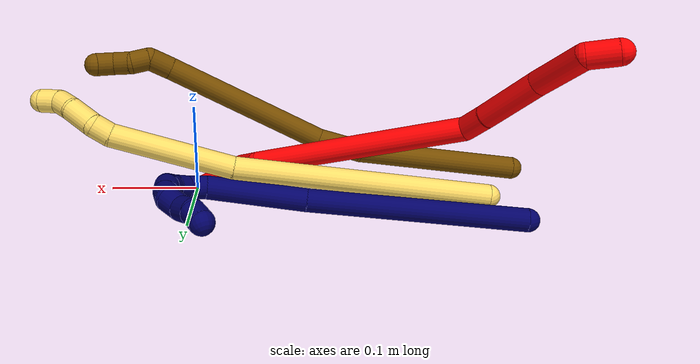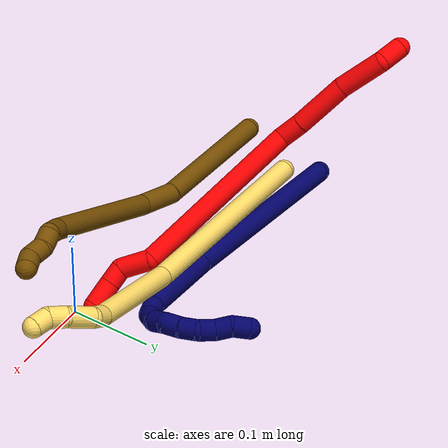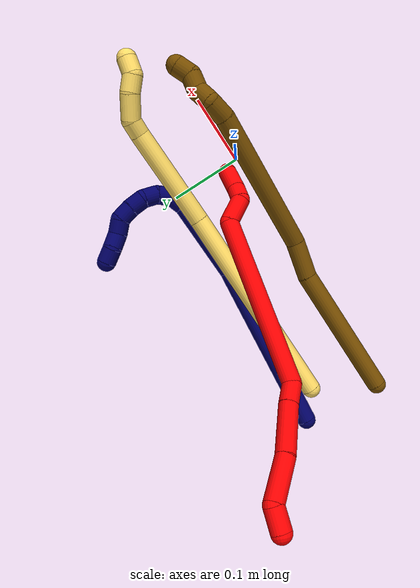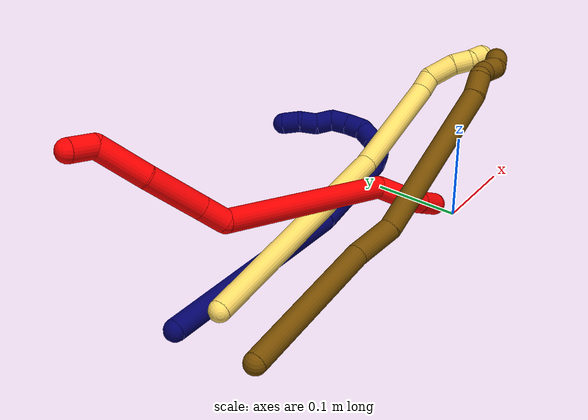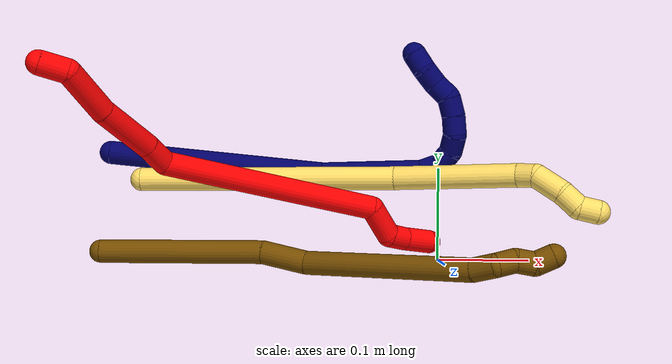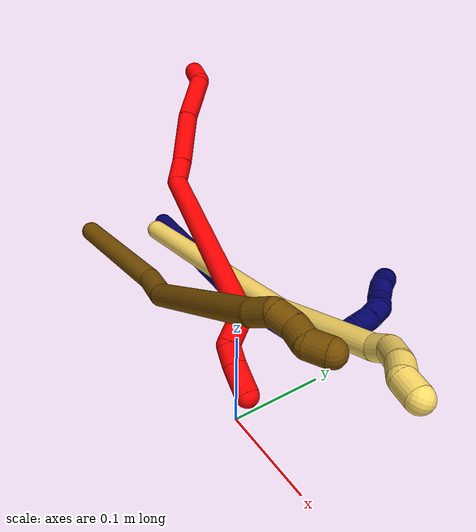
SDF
<sdf version="1.7">
 <world name="default">
  <model name="2">
   <static>0</static>
   <link name="2">
    <collision name="collision-cylinder-e_1_1_4">
     <pose>0.001347 -0.001269 -0.014573 3.05475 0.091822 1.62663</pose>
     <geometry><cylinder><radius>0.0125</radius><length>0.029379</length></cylinder></geometry>
     <surface>
      <friction><ode><mu>1.16</mu><mu2>1.16</mu2><slip1>0</slip1><slip2>0</slip2></ode></friction>
      <contact><ode><kp>1e+06</kp><kd>1</kd><max_vel>0</max_vel><min_depth>0.001</min_depth></ode></contact>
     </surface>
    </collision>
    <visual name="visual-cylinder-e_1_1_4">
     <pose>0.001347 -0.001269 -0.014573 3.05475 0.091822 1.62663</pose>
     <geometry><cylinder><radius>0.0125</radius><length>0.029379</length></cylinder></geometry>
     <material><ambient>1 0 0 1</ambient></material>
    </visual>
    <collision name="collision-cylinder-e_2_4_5">
     <pose>0.004822 0.014902 -0.052022 -2.49025 0.073847 -0.217913</pose>
     <geometry><cylinder><radius>0.0125</radius><length>0.057687</length></cylinder></geometry>
     <surface>
      <friction><ode><mu>1.16</mu><mu2>1.16</mu2><slip1>0</slip1><slip2>0</slip2></ode></friction>
      <contact><ode><kp>1e+06</kp><kd>1</kd><max_vel>0</max_vel><min_depth>0.001</min_depth></ode></contact>
     </surface>
    </collision>
    <visual name="visual-cylinder-e_2_4_5">
     <pose>0.004822 0.014902 -0.052022 -2.49025 0.073847 -0.217913</pose>
     <geometry><cylinder><radius>0.0125</radius><length>0.057687</length></cylinder></geometry>
     <material><ambient>1 0 0 1</ambient></material>
    </visual>
    <collision name="collision-cylinder-e_3_5_6">
     <pose>0.01396 0.049352 -0.102584 -2.59061 0.212474 -0.721476</pose>
     <geometry><cylinder><radius>0.0125</radius><length>0.066486</length></cylinder></geometry>
     <surface>
      <friction><ode><mu>1.16</mu><mu2>1.16</mu2><slip1>0</slip1><slip2>0</slip2></ode></friction>
      <contact><ode><kp>1e+06</kp><kd>1</kd><max_vel>0</max_vel><min_depth>0.001</min_depth></ode></contact>
     </surface>
    </collision>
    <visual name="visual-cylinder-e_3_5_6">
     <pose>0.01396 0.049352 -0.102584 -2.59061 0.212474 -0.721476</pose>
     <geometry><cylinder><radius>0.0125</radius><length>0.066486</length></cylinder></geometry>
     <material><ambient>1 0 0 1</ambient></material>
    </visual>
    <collision name="collision-cylinder-e_4_6_7">
     <pose>0.022993 0.074593 -0.142368 -2.54429 0.137379 -0.439716</pose>
     <geometry><cylinder><radius>0.0125</radius><length>0.029541</length></cylinder></geometry>
     <surface>
      <friction><ode><mu>1.16</mu><mu2>1.16</mu2><slip1>0</slip1><slip2>0</slip2></ode></friction>
      <contact><ode><kp>1e+06</kp><kd>1</kd><max_vel>0</max_vel><min_depth>0.001</min_depth></ode></contact>
     </surface>
    </collision>
    <visual name="visual-cylinder-e_4_6_7">
     <pose>0.022993 0.074593 -0.142368 -2.54429 0.137379 -0.439716</pose>
     <geometry><cylinder><radius>0.0125</radius><length>0.029541</length></cylinder></geometry>
     <material><ambient>1 0 0 1</ambient></material>
    </visual>
    <collision name="collision-cylinder-e_5_7_8">
     <pose>0.04503 0.071914 -0.264981 3.04322 0.178311 2.13483</pose>
     <geometry><cylinder><radius>0.0125</radius><length>0.225682</length></cylinder></geometry>
     <surface>
      <friction><ode><mu>1.16</mu><mu2>1.16</mu2><slip1>0</slip1><slip2>0</slip2></ode></friction>
      <contact><ode><kp>1e+06</kp><kd>1</kd><max_vel>0</max_vel><min_depth>0.001</min_depth></ode></contact>
     </surface>
    </collision>
    <visual name="visual-cylinder-e_5_7_8">
     <pose>0.04503 0.071914 -0.264981 3.04322 0.178311 2.13483</pose>
     <geometry><cylinder><radius>0.0125</radius><length>0.225682</length></cylinder></geometry>
     <material><ambient>1 0 0 1</ambient></material>
    </visual>
    <collision name="collision-cylinder-e_6_8_9">
     <pose>0.061477 0.071331 -0.390849 -2.54963 -0.190466 0.607138</pose>
     <geometry><cylinder><radius>0.0125</radius><length>0.037684</length></cylinder></geometry>
     <surface>
      <friction><ode><mu>1.16</mu><mu2>1.16</mu2><slip1>0</slip1><slip2>0</slip2></ode></friction>
      <contact><ode><kp>1e+06</kp><kd>1</kd><max_vel>0</max_vel><min_depth>0.001</min_depth></ode></contact>
     </surface>
    </collision>
    <visual name="visual-cylinder-e_6_8_9">
     <pose>0.061477 0.071331 -0.390849 -2.54963 -0.190466 0.607138</pose>
     <geometry><cylinder><radius>0.0125</radius><length>0.037684</length></cylinder></geometry>
     <material><ambient>1 0 0 1</ambient></material>
    </visual>
    <collision name="collision-cylinder-e_7_9_10">
     <pose>0.062164 0.083434 -0.415818 -2.95854 0.410242 -2.31065</pose>
     <geometry><cylinder><radius>0.0125</radius><length>0.021329</length></cylinder></geometry>
     <surface>
      <friction><ode><mu>1.16</mu><mu2>1.16</mu2><slip1>0</slip1><slip2>0</slip2></ode></friction>
      <contact><ode><kp>1e+06</kp><kd>1</kd><max_vel>0</max_vel><min_depth>0.001</min_depth></ode></contact>
     </surface>
    </collision>
    <visual name="visual-cylinder-e_7_9_10">
     <pose>0.062164 0.083434 -0.415818 -2.95854 0.410242 -2.31065</pose>
     <geometry><cylinder><radius>0.0125</radius><length>0.021329</length></cylinder></geometry>
     <material><ambient>1 0 0 1</ambient></material>
    </visual>
    <collision name="collision-cylinder-e_8_10_2">
     <pose>0.072846 0.086055 -0.440178 -3.08464 0.410616 -2.8697</pose>
     <geometry><cylinder><radius>0.0125</radius><length>0.032213</length></cylinder></geometry>
     <surface>
      <friction><ode><mu>1.16</mu><mu2>1.16</mu2><slip1>0</slip1><slip2>0</slip2></ode></friction>
      <contact><ode><kp>1e+06</kp><kd>1</kd><max_vel>0</max_vel><min_depth>0.001</min_depth></ode></contact>
     </surface>
    </collision>
    <visual name="visual-cylinder-e_8_10_2">
     <pose>0.072846 0.086055 -0.440178 -3.08464 0.410616 -2.8697</pose>
     <geometry><cylinder><radius>0.0125</radius><length>0.032213</length></cylinder></geometry>
     <material><ambient>1 0 0 1</ambient></material>
    </visual>
    <collision name="collision-sphere-2">
     <pose>0.079276 0.086896 -0.454921 0 -0 0</pose>
     <geometry><sphere><radius>0.0125</radius></sphere></geometry>
     <surface>
      <friction><ode><mu>1.16</mu><mu2>1.16</mu2><slip1>0</slip1><slip2>0</slip2></ode></friction>
      <contact><ode><kp>1e+06</kp><kd>1</kd><max_vel>0</max_vel><min_depth>0.001</min_depth></ode></contact>
     </surface>
    </collision>
    <visual name="visual-sphere-2">
     <pose>0.079276 0.086896 -0.454921 0 -0 0</pose>
     <geometry><sphere><radius>0.0125</radius></sphere></geometry>
     <material><ambient>1 0 0 1</ambient></material>
    </visual>
    <collision name="collision-sphere-10">
     <pose>0.066417 0.085214 -0.425434 0 -0 0</pose>
     <geometry><sphere><radius>0.0125</radius></sphere></geometry>
     <surface>
      <friction><ode><mu>1.16</mu><mu2>1.16</mu2><slip1>0</slip1><slip2>0</slip2></ode></friction>
      <contact><ode><kp>1e+06</kp><kd>1</kd><max_vel>0</max_vel><min_depth>0.001</min_depth></ode></contact>
     </surface>
    </collision>
    <visual name="visual-sphere-10">
     <pose>0.066417 0.085214 -0.425434 0 -0 0</pose>
     <geometry><sphere><radius>0.0125</radius></sphere></geometry>
     <material><ambient>1 0 0 1</ambient></material>
    </visual>
    <collision name="collision-sphere-9">
     <pose>0.05791 0.081654 -0.406202 0 -0 0</pose>
     <geometry><sphere><radius>0.0125</radius></sphere></geometry>
     <surface>
      <friction><ode><mu>1.16</mu><mu2>1.16</mu2><slip1>0</slip1><slip2>0</slip2></ode></friction>
      <contact><ode><kp>1e+06</kp><kd>1</kd><max_vel>0</max_vel><min_depth>0.001</min_depth></ode></contact>
     </surface>
    </collision>
    <visual name="visual-sphere-9">
     <pose>0.05791 0.081654 -0.406202 0 -0 0</pose>
     <geometry><sphere><radius>0.0125</radius></sphere></geometry>
     <material><ambient>1 0 0 1</ambient></material>
    </visual>
    <collision name="collision-sphere-4">
     <pose>0.002694 -0.002537 -0.029145 0 -0 0</pose>
     <geometry><sphere><radius>0.0125</radius></sphere></geometry>
     <surface>
      <friction><ode><mu>1.16</mu><mu2>1.16</mu2><slip1>0</slip1><slip2>0</slip2></ode></friction>
      <contact><ode><kp>1e+06</kp><kd>1</kd><max_vel>0</max_vel><min_depth>0.001</min_depth></ode></contact>
     </surface>
    </collision>
    <visual name="visual-sphere-4">
     <pose>0.002694 -0.002537 -0.029145 0 -0 0</pose>
     <geometry><sphere><radius>0.0125</radius></sphere></geometry>
     <material><ambient>1 0 0 1</ambient></material>
    </visual>
    <collision name="collision-sphere-1">
     <geometry><sphere><radius>0.0125</radius></sphere></geometry>
     <surface>
      <friction><ode><mu>1.16</mu><mu2>1.16</mu2><slip1>0</slip1><slip2>0</slip2></ode></friction>
      <contact><ode><kp>1e+06</kp><kd>1</kd><max_vel>0</max_vel><min_depth>0.001</min_depth></ode></contact>
     </surface>
    </collision>
    <visual name="visual-sphere-1">
     <geometry><sphere><radius>0.0125</radius></sphere></geometry>
     <material><ambient>1 0 0 1</ambient></material>
    </visual>
    <collision name="collision-sphere-8">
     <pose>0.065045 0.061007 -0.375495 0 -0 0</pose>
     <geometry><sphere><radius>0.0125</radius></sphere></geometry>
     <surface>
      <friction><ode><mu>1.16</mu><mu2>1.16</mu2><slip1>0</slip1><slip2>0</slip2></ode></friction>
      <contact><ode><kp>1e+06</kp><kd>1</kd><max_vel>0</max_vel><min_depth>0.001</min_depth></ode></contact>
     </surface>
    </collision>
    <visual name="visual-sphere-8">
     <pose>0.065045 0.061007 -0.375495 0 -0 0</pose>
     <geometry><sphere><radius>0.0125</radius></sphere></geometry>
     <material><ambient>1 0 0 1</ambient></material>
    </visual>
    <collision name="collision-sphere-5">
     <pose>0.00695 0.03234 -0.074898 0 -0 0</pose>
     <geometry><sphere><radius>0.0125</radius></sphere></geometry>
     <surface>
      <friction><ode><mu>1.16</mu><mu2>1.16</mu2><slip1>0</slip1><slip2>0</slip2></ode></friction>
      <contact><ode><kp>1e+06</kp><kd>1</kd><max_vel>0</max_vel><min_depth>0.001</min_depth></ode></contact>
     </surface>
    </collision>
    <visual name="visual-sphere-5">
     <pose>0.00695 0.03234 -0.074898 0 -0 0</pose>
     <geometry><sphere><radius>0.0125</radius></sphere></geometry>
     <material><ambient>1 0 0 1</ambient></material>
    </visual>
    <collision name="collision-sphere-6">
     <pose>0.02097 0.066364 -0.13027 0 -0 0</pose>
     <geometry><sphere><radius>0.0125</radius></sphere></geometry>
     <surface>
      <friction><ode><mu>1.16</mu><mu2>1.16</mu2><slip1>0</slip1><slip2>0</slip2></ode></friction>
      <contact><ode><kp>1e+06</kp><kd>1</kd><max_vel>0</max_vel><min_depth>0.001</min_depth></ode></contact>
     </surface>
    </collision>
    <visual name="visual-sphere-6">
     <pose>0.02097 0.066364 -0.13027 0 -0 0</pose>
     <geometry><sphere><radius>0.0125</radius></sphere></geometry>
     <material><ambient>1 0 0 1</ambient></material>
    </visual>
    <collision name="collision-sphere-7">
     <pose>0.025016 0.082822 -0.154466 0 -0 0</pose>
     <geometry><sphere><radius>0.0125</radius></sphere></geometry>
     <surface>
      <friction><ode><mu>1.16</mu><mu2>1.16</mu2><slip1>0</slip1><slip2>0</slip2></ode></friction>
      <contact><ode><kp>1e+06</kp><kd>1</kd><max_vel>0</max_vel><min_depth>0.001</min_depth></ode></contact>
     </surface>
    </collision>
    <visual name="visual-sphere-7">
     <pose>0.025016 0.082822 -0.154466 0 -0 0</pose>
     <geometry><sphere><radius>0.0125</radius></sphere></geometry>
     <material><ambient>1 0 0 1</ambient></material>
    </visual>
    <inertial>
     <pose>0.036154 0.059553 -0.224067 0 -0 0</pose>
     <mass>0.5</mass>
     <inertia>
      <ixx>0.000324</ixx>
      <ixy>0</ixy>
      <ixz>0</ixz>
      <iyy>0.001291</iyy>
      <iyz>0</iyz>
      <izz>-0.000153</izz>
     </inertia>
    </inertial>
   </link>
   <pose>-0.398435 0.194143 0.211415 -1.30404 0.787754 1.35926</pose>
  </model>
  <model name="5">
   <static>0</static>
   <link name="5">
    <collision name="collision-cylinder-e_1_1_4">
     <pose>0.099391 0.00742 0.093886 -0.078869 0.812317 -0.033934</pose>
     <geometry><cylinder><radius>0.0125</radius><length>0.273848</length></cylinder></geometry>
     <surface>
      <friction><ode><mu>1.16</mu><mu2>1.16</mu2><slip1>0</slip1><slip2>0</slip2></ode></friction>
      <contact><ode><kp>1e+06</kp><kd>1</kd><max_vel>0</max_vel><min_depth>0.001</min_depth></ode></contact>
     </surface>
    </collision>
    <visual name="visual-cylinder-e_1_1_4">
     <pose>0.099391 0.00742 0.093886 -0.078869 0.812317 -0.033934</pose>
     <geometry><cylinder><radius>0.0125</radius><length>0.273848</length></cylinder></geometry>
     <material><ambient>1 0.858824 0.4 1</ambient></material>
    </visual>
    <collision name="collision-cylinder-e_2_4_5">
     <pose>0.249158 0.008113 0.229251 0.160797 0.875586 0.075394</pose>
     <geometry><cylinder><radius>0.0125</radius><length>0.131203</length></cylinder></geometry>
     <surface>
      <friction><ode><mu>1.16</mu><mu2>1.16</mu2><slip1>0</slip1><slip2>0</slip2></ode></friction>
      <contact><ode><kp>1e+06</kp><kd>1</kd><max_vel>0</max_vel><min_depth>0.001</min_depth></ode></contact>
     </surface>
    </collision>
    <visual name="visual-cylinder-e_2_4_5">
     <pose>0.249158 0.008113 0.229251 0.160797 0.875586 0.075394</pose>
     <geometry><cylinder><radius>0.0125</radius><length>0.131203</length></cylinder></geometry>
     <material><ambient>1 0.858824 0.4 1</ambient></material>
    </visual>
    <collision name="collision-cylinder-e_3_5_6">
     <pose>0.307891 -0.001699 0.275369 0.586644 0.982801 0.320518</pose>
     <geometry><cylinder><radius>0.0125</radius><length>0.020086</length></cylinder></geometry>
     <surface>
      <friction><ode><mu>1.16</mu><mu2>1.16</mu2><slip1>0</slip1><slip2>0</slip2></ode></friction>
      <contact><ode><kp>1e+06</kp><kd>1</kd><max_vel>0</max_vel><min_depth>0.001</min_depth></ode></contact>
     </surface>
    </collision>
    <visual name="visual-cylinder-e_3_5_6">
     <pose>0.307891 -0.001699 0.275369 0.586644 0.982801 0.320518</pose>
     <geometry><cylinder><radius>0.0125</radius><length>0.020086</length></cylinder></geometry>
     <material><ambient>1 0.858824 0.4 1</ambient></material>
    </visual>
    <collision name="collision-cylinder-e_4_6_7">
     <pose>0.332256 -0.00356 0.281853 -0.585302 1.43344 -0.513452</pose>
     <geometry><cylinder><radius>0.0125</radius><length>0.032322</length></cylinder></geometry>
     <surface>
      <friction><ode><mu>1.16</mu><mu2>1.16</mu2><slip1>0</slip1><slip2>0</slip2></ode></friction>
      <contact><ode><kp>1e+06</kp><kd>1</kd><max_vel>0</max_vel><min_depth>0.001</min_depth></ode></contact>
     </surface>
    </collision>
    <visual name="visual-cylinder-e_4_6_7">
     <pose>0.332256 -0.00356 0.281853 -0.585302 1.43344 -0.513452</pose>
     <geometry><cylinder><radius>0.0125</radius><length>0.032322</length></cylinder></geometry>
     <material><ambient>1 0.858824 0.4 1</ambient></material>
    </visual>
    <collision name="collision-cylinder-e_5_7_8">
     <pose>0.358728 0.001055 0.284029 -1.47335 1.25583 -1.16454</pose>
     <geometry><cylinder><radius>0.0125</radius><length>0.022011</length></cylinder></geometry>
     <surface>
      <friction><ode><mu>1.16</mu><mu2>1.16</mu2><slip1>0</slip1><slip2>0</slip2></ode></friction>
      <contact><ode><kp>1e+06</kp><kd>1</kd><max_vel>0</max_vel><min_depth>0.001</min_depth></ode></contact>
     </surface>
    </collision>
    <visual name="visual-cylinder-e_5_7_8">
     <pose>0.358728 0.001055 0.284029 -1.47335 1.25583 -1.16454</pose>
     <geometry><cylinder><radius>0.0125</radius><length>0.022011</length></cylinder></geometry>
     <material><ambient>1 0.858824 0.4 1</ambient></material>
    </visual>
    <collision name="collision-cylinder-e_6_8_2">
     <pose>0.377189 0.007455 0.290052 -0.485971 0.893055 -0.236258</pose>
     <geometry><cylinder><radius>0.0125</radius><length>0.020531</length></cylinder></geometry>
     <surface>
      <friction><ode><mu>1.16</mu><mu2>1.16</mu2><slip1>0</slip1><slip2>0</slip2></ode></friction>
      <contact><ode><kp>1e+06</kp><kd>1</kd><max_vel>0</max_vel><min_depth>0.001</min_depth></ode></contact>
     </surface>
    </collision>
    <visual name="visual-cylinder-e_6_8_2">
     <pose>0.377189 0.007455 0.290052 -0.485971 0.893055 -0.236258</pose>
     <geometry><cylinder><radius>0.0125</radius><length>0.020531</length></cylinder></geometry>
     <material><ambient>1 0.858824 0.4 1</ambient></material>
    </visual>
    <collision name="collision-sphere-2">
     <pose>0.385186 0.010461 0.295744 0 -0 0</pose>
     <geometry><sphere><radius>0.0125</radius></sphere></geometry>
     <surface>
      <friction><ode><mu>1.16</mu><mu2>1.16</mu2><slip1>0</slip1><slip2>0</slip2></ode></friction>
      <contact><ode><kp>1e+06</kp><kd>1</kd><max_vel>0</max_vel><min_depth>0.001</min_depth></ode></contact>
     </surface>
    </collision>
    <visual name="visual-sphere-2">
     <pose>0.385186 0.010461 0.295744 0 -0 0</pose>
     <geometry><sphere><radius>0.0125</radius></sphere></geometry>
     <material><ambient>1 0.858824 0.4 1</ambient></material>
    </visual>
    <collision name="collision-sphere-4">
     <pose>0.198781 0.01484 0.187772 0 -0 0</pose>
     <geometry><sphere><radius>0.0125</radius></sphere></geometry>
     <surface>
      <friction><ode><mu>1.16</mu><mu2>1.16</mu2><slip1>0</slip1><slip2>0</slip2></ode></friction>
      <contact><ode><kp>1e+06</kp><kd>1</kd><max_vel>0</max_vel><min_depth>0.001</min_depth></ode></contact>
     </surface>
    </collision>
    <visual name="visual-sphere-4">
     <pose>0.198781 0.01484 0.187772 0 -0 0</pose>
     <geometry><sphere><radius>0.0125</radius></sphere></geometry>
     <material><ambient>1 0.858824 0.4 1</ambient></material>
    </visual>
    <collision name="collision-sphere-1">
     <geometry><sphere><radius>0.0125</radius></sphere></geometry>
     <surface>
      <friction><ode><mu>1.16</mu><mu2>1.16</mu2><slip1>0</slip1><slip2>0</slip2></ode></friction>
      <contact><ode><kp>1e+06</kp><kd>1</kd><max_vel>0</max_vel><min_depth>0.001</min_depth></ode></contact>
     </surface>
    </collision>
    <visual name="visual-sphere-1">
     <geometry><sphere><radius>0.0125</radius></sphere></geometry>
     <material><ambient>1 0.858824 0.4 1</ambient></material>
    </visual>
    <collision name="collision-sphere-8">
     <pose>0.369193 0.004448 0.284361 0 -0 0</pose>
     <geometry><sphere><radius>0.0125</radius></sphere></geometry>
     <surface>
      <friction><ode><mu>1.16</mu><mu2>1.16</mu2><slip1>0</slip1><slip2>0</slip2></ode></friction>
      <contact><ode><kp>1e+06</kp><kd>1</kd><max_vel>0</max_vel><min_depth>0.001</min_depth></ode></contact>
     </surface>
    </collision>
    <visual name="visual-sphere-8">
     <pose>0.369193 0.004448 0.284361 0 -0 0</pose>
     <geometry><sphere><radius>0.0125</radius></sphere></geometry>
     <material><ambient>1 0.858824 0.4 1</ambient></material>
    </visual>
    <collision name="collision-sphere-5">
     <pose>0.299534 0.001385 0.270729 0 -0 0</pose>
     <geometry><sphere><radius>0.0125</radius></sphere></geometry>
     <surface>
      <friction><ode><mu>1.16</mu><mu2>1.16</mu2><slip1>0</slip1><slip2>0</slip2></ode></friction>
      <contact><ode><kp>1e+06</kp><kd>1</kd><max_vel>0</max_vel><min_depth>0.001</min_depth></ode></contact>
     </surface>
    </collision>
    <visual name="visual-sphere-5">
     <pose>0.299534 0.001385 0.270729 0 -0 0</pose>
     <geometry><sphere><radius>0.0125</radius></sphere></geometry>
     <material><ambient>1 0.858824 0.4 1</ambient></material>
    </visual>
    <collision name="collision-sphere-6">
     <pose>0.316247 -0.004783 0.280008 0 -0 0</pose>
     <geometry><sphere><radius>0.0125</radius></sphere></geometry>
     <surface>
      <friction><ode><mu>1.16</mu><mu2>1.16</mu2><slip1>0</slip1><slip2>0</slip2></ode></friction>
      <contact><ode><kp>1e+06</kp><kd>1</kd><max_vel>0</max_vel><min_depth>0.001</min_depth></ode></contact>
     </surface>
    </collision>
    <visual name="visual-sphere-6">
     <pose>0.316247 -0.004783 0.280008 0 -0 0</pose>
     <geometry><sphere><radius>0.0125</radius></sphere></geometry>
     <material><ambient>1 0.858824 0.4 1</ambient></material>
    </visual>
    <collision name="collision-sphere-7">
     <pose>0.348264 -0.002338 0.283697 0 -0 0</pose>
     <geometry><sphere><radius>0.0125</radius></sphere></geometry>
     <surface>
      <friction><ode><mu>1.16</mu><mu2>1.16</mu2><slip1>0</slip1><slip2>0</slip2></ode></friction>
      <contact><ode><kp>1e+06</kp><kd>1</kd><max_vel>0</max_vel><min_depth>0.001</min_depth></ode></contact>
     </surface>
    </collision>
    <visual name="visual-sphere-7">
     <pose>0.348264 -0.002338 0.283697 0 -0 0</pose>
     <geometry><sphere><radius>0.0125</radius></sphere></geometry>
     <material><ambient>1 0.858824 0.4 1</ambient></material>
    </visual>
    <inertial>
     <pose>0.184943 0.006247 0.165273 0 -0 0</pose>
     <mass>0.5</mass>
     <inertia>
      <ixx>0.001308</ixx>
      <ixy>0</ixy>
      <ixz>0</ixz>
      <iyy>0.001889</iyy>
      <iyz>0</iyz>
      <izz>-0.001458</izz>
     </inertia>
    </inertial>
   </link>
   <pose>-0.32248 0.084439 0.026403 -1.83797 -0.479511 -0.694337</pose>
  </model>
  <model name="7">
   <static>0</static>
   <link name="7">
    <collision name="collision-cylinder-e_1_1_4">
     <pose>0.100532 -0.02932 0.050282 0.527911 1.04598 0.309145</pose>
     <geometry><cylinder><radius>0.0125</radius><length>0.232334</length></cylinder></geometry>
     <surface>
      <friction><ode><mu>1.16</mu><mu2>1.16</mu2><slip1>0</slip1><slip2>0</slip2></ode></friction>
      <contact><ode><kp>1e+06</kp><kd>1</kd><max_vel>0</max_vel><min_depth>0.001</min_depth></ode></contact>
     </surface>
    </collision>
    <visual name="visual-cylinder-e_1_1_4">
     <pose>0.100532 -0.02932 0.050282 0.527911 1.04598 0.309145</pose>
     <geometry><cylinder><radius>0.0125</radius><length>0.232334</length></cylinder></geometry>
     <material><ambient>0.003922 0 0.403922 1</ambient></material>
    </visual>
    <collision name="collision-cylinder-e_2_4_5">
     <pose>0.249611 -0.06392 0.122911 0.231984 1.12898 0.147294</pose>
     <geometry><cylinder><radius>0.0125</radius><length>0.107405</length></cylinder></geometry>
     <surface>
      <friction><ode><mu>1.16</mu><mu2>1.16</mu2><slip1>0</slip1><slip2>0</slip2></ode></friction>
      <contact><ode><kp>1e+06</kp><kd>1</kd><max_vel>0</max_vel><min_depth>0.001</min_depth></ode></contact>
     </surface>
    </collision>
    <visual name="visual-cylinder-e_2_4_5">
     <pose>0.249611 -0.06392 0.122911 0.231984 1.12898 0.147294</pose>
     <geometry><cylinder><radius>0.0125</radius><length>0.107405</length></cylinder></geometry>
     <material><ambient>0.003922 0 0.403922 1</ambient></material>
    </visual>
    <collision name="collision-cylinder-e_3_5_6">
     <pose>0.308003 -0.068297 0.147121 -0.450605 1.36362 -0.36785</pose>
     <geometry><cylinder><radius>0.0125</radius><length>0.020123</length></cylinder></geometry>
     <surface>
      <friction><ode><mu>1.16</mu><mu2>1.16</mu2><slip1>0</slip1><slip2>0</slip2></ode></friction>
      <contact><ode><kp>1e+06</kp><kd>1</kd><max_vel>0</max_vel><min_depth>0.001</min_depth></ode></contact>
     </surface>
    </collision>
    <visual name="visual-cylinder-e_3_5_6">
     <pose>0.308003 -0.068297 0.147121 -0.450605 1.36362 -0.36785</pose>
     <geometry><cylinder><radius>0.0125</radius><length>0.020123</length></cylinder></geometry>
     <material><ambient>0.003922 0 0.403922 1</ambient></material>
    </visual>
    <collision name="collision-cylinder-e_4_6_7">
     <pose>0.325902 -0.061424 0.148682 -1.62128 0.932063 -0.973215</pose>
     <geometry><cylinder><radius>0.0125</radius><length>0.02006</length></cylinder></geometry>
     <surface>
      <friction><ode><mu>1.16</mu><mu2>1.16</mu2><slip1>0</slip1><slip2>0</slip2></ode></friction>
      <contact><ode><kp>1e+06</kp><kd>1</kd><max_vel>0</max_vel><min_depth>0.001</min_depth></ode></contact>
     </surface>
    </collision>
    <visual name="visual-cylinder-e_4_6_7">
     <pose>0.325902 -0.061424 0.148682 -1.62128 0.932063 -0.973215</pose>
     <geometry><cylinder><radius>0.0125</radius><length>0.02006</length></cylinder></geometry>
     <material><ambient>0.003922 0 0.403922 1</ambient></material>
    </visual>
    <collision name="collision-cylinder-e_5_7_8">
     <pose>0.338918 -0.047005 0.14623 -1.82012 0.517555 -0.656481</pose>
     <geometry><cylinder><radius>0.0125</radius><length>0.02006</length></cylinder></geometry>
     <surface>
      <friction><ode><mu>1.16</mu><mu2>1.16</mu2><slip1>0</slip1><slip2>0</slip2></ode></friction>
      <contact><ode><kp>1e+06</kp><kd>1</kd><max_vel>0</max_vel><min_depth>0.001</min_depth></ode></contact>
     </surface>
    </collision>
    <visual name="visual-cylinder-e_5_7_8">
     <pose>0.338918 -0.047005 0.14623 -1.82012 0.517555 -0.656481</pose>
     <geometry><cylinder><radius>0.0125</radius><length>0.02006</length></cylinder></geometry>
     <material><ambient>0.003922 0 0.403922 1</ambient></material>
    </visual>
    <collision name="collision-cylinder-e_6_8_9">
     <pose>0.347063 -0.031404 0.137847 -2.2874 0.323725 -0.688975</pose>
     <geometry><cylinder><radius>0.0125</radius><length>0.020014</length></cylinder></geometry>
     <surface>
      <friction><ode><mu>1.16</mu><mu2>1.16</mu2><slip1>0</slip1><slip2>0</slip2></ode></friction>
      <contact><ode><kp>1e+06</kp><kd>1</kd><max_vel>0</max_vel><min_depth>0.001</min_depth></ode></contact>
     </surface>
    </collision>
    <visual name="visual-cylinder-e_6_8_9">
     <pose>0.347063 -0.031404 0.137847 -2.2874 0.323725 -0.688975</pose>
     <geometry><cylinder><radius>0.0125</radius><length>0.020014</length></cylinder></geometry>
     <material><ambient>0.003922 0 0.403922 1</ambient></material>
    </visual>
    <collision name="collision-cylinder-e_7_9_10">
     <pose>0.35173 -0.016835 0.125072 -2.29384 0.148853 -0.327531</pose>
     <geometry><cylinder><radius>0.0125</radius><length>0.02</length></cylinder></geometry>
     <surface>
      <friction><ode><mu>1.16</mu><mu2>1.16</mu2><slip1>0</slip1><slip2>0</slip2></ode></friction>
      <contact><ode><kp>1e+06</kp><kd>1</kd><max_vel>0</max_vel><min_depth>0.001</min_depth></ode></contact>
     </surface>
    </collision>
    <visual name="visual-cylinder-e_7_9_10">
     <pose>0.35173 -0.016835 0.125072 -2.29384 0.148853 -0.327531</pose>
     <geometry><cylinder><radius>0.0125</radius><length>0.02</length></cylinder></geometry>
     <material><ambient>0.003922 0 0.403922 1</ambient></material>
    </visual>
    <collision name="collision-cylinder-e_8_10_11">
     <pose>0.349841 -0.00449 0.110508 -2.59053 -0.343936 1.10178</pose>
     <geometry><cylinder><radius>0.0125</radius><length>0.020001</length></cylinder></geometry>
     <surface>
      <friction><ode><mu>1.16</mu><mu2>1.16</mu2><slip1>0</slip1><slip2>0</slip2></ode></friction>
      <contact><ode><kp>1e+06</kp><kd>1</kd><max_vel>0</max_vel><min_depth>0.001</min_depth></ode></contact>
     </surface>
    </collision>
    <visual name="visual-cylinder-e_8_10_11">
     <pose>0.349841 -0.00449 0.110508 -2.59053 -0.343936 1.10178</pose>
     <geometry><cylinder><radius>0.0125</radius><length>0.020001</length></cylinder></geometry>
     <material><ambient>0.003922 0 0.403922 1</ambient></material>
    </visual>
    <collision name="collision-cylinder-e_9_11_12">
     <pose>0.343815 0.008244 0.096825 -2.19837 -0.268521 0.517813</pose>
     <geometry><cylinder><radius>0.0125</radius><length>0.020001</length></cylinder></geometry>
     <surface>
      <friction><ode><mu>1.16</mu><mu2>1.16</mu2><slip1>0</slip1><slip2>0</slip2></ode></friction>
      <contact><ode><kp>1e+06</kp><kd>1</kd><max_vel>0</max_vel><min_depth>0.001</min_depth></ode></contact>
     </surface>
    </collision>
    <visual name="visual-cylinder-e_9_11_12">
     <pose>0.343815 0.008244 0.096825 -2.19837 -0.268521 0.517813</pose>
     <geometry><cylinder><radius>0.0125</radius><length>0.020001</length></cylinder></geometry>
     <material><ambient>0.003922 0 0.403922 1</ambient></material>
    </visual>
    <collision name="collision-cylinder-e_10_12_2">
     <pose>0.339828 0.021501 0.082886 -2.55916 -0.133847 0.439974</pose>
     <geometry><cylinder><radius>0.0125</radius><length>0.020001</length></cylinder></geometry>
     <surface>
      <friction><ode><mu>1.16</mu><mu2>1.16</mu2><slip1>0</slip1><slip2>0</slip2></ode></friction>
      <contact><ode><kp>1e+06</kp><kd>1</kd><max_vel>0</max_vel><min_depth>0.001</min_depth></ode></contact>
     </surface>
    </collision>
    <visual name="visual-cylinder-e_10_12_2">
     <pose>0.339828 0.021501 0.082886 -2.55916 -0.133847 0.439974</pose>
     <geometry><cylinder><radius>0.0125</radius><length>0.020001</length></cylinder></geometry>
     <material><ambient>0.003922 0 0.403922 1</ambient></material>
    </visual>
    <collision name="collision-sphere-2">
     <pose>0.338493 0.026952 0.074609 0 -0 0</pose>
     <geometry><sphere><radius>0.0125</radius></sphere></geometry>
     <surface>
      <friction><ode><mu>1.16</mu><mu2>1.16</mu2><slip1>0</slip1><slip2>0</slip2></ode></friction>
      <contact><ode><kp>1e+06</kp><kd>1</kd><max_vel>0</max_vel><min_depth>0.001</min_depth></ode></contact>
     </surface>
    </collision>
    <visual name="visual-sphere-2">
     <pose>0.338493 0.026952 0.074609 0 -0 0</pose>
     <geometry><sphere><radius>0.0125</radius></sphere></geometry>
     <material><ambient>0.003922 0 0.403922 1</ambient></material>
    </visual>
    <collision name="collision-sphere-12">
     <pose>0.341162 0.016049 0.091163 0 -0 0</pose>
     <geometry><sphere><radius>0.0125</radius></sphere></geometry>
     <surface>
      <friction><ode><mu>1.16</mu><mu2>1.16</mu2><slip1>0</slip1><slip2>0</slip2></ode></friction>
      <contact><ode><kp>1e+06</kp><kd>1</kd><max_vel>0</max_vel><min_depth>0.001</min_depth></ode></contact>
     </surface>
    </collision>
    <visual name="visual-sphere-12">
     <pose>0.341162 0.016049 0.091163 0 -0 0</pose>
     <geometry><sphere><radius>0.0125</radius></sphere></geometry>
     <material><ambient>0.003922 0 0.403922 1</ambient></material>
    </visual>
    <collision name="collision-sphere-11">
     <pose>0.346468 0.000439 0.102486 0 -0 0</pose>
     <geometry><sphere><radius>0.0125</radius></sphere></geometry>
     <surface>
      <friction><ode><mu>1.16</mu><mu2>1.16</mu2><slip1>0</slip1><slip2>0</slip2></ode></friction>
      <contact><ode><kp>1e+06</kp><kd>1</kd><max_vel>0</max_vel><min_depth>0.001</min_depth></ode></contact>
     </surface>
    </collision>
    <visual name="visual-sphere-11">
     <pose>0.346468 0.000439 0.102486 0 -0 0</pose>
     <geometry><sphere><radius>0.0125</radius></sphere></geometry>
     <material><ambient>0.003922 0 0.403922 1</ambient></material>
    </visual>
    <collision name="collision-sphere-10">
     <pose>0.353213 -0.00942 0.118529 0 -0 0</pose>
     <geometry><sphere><radius>0.0125</radius></sphere></geometry>
     <surface>
      <friction><ode><mu>1.16</mu><mu2>1.16</mu2><slip1>0</slip1><slip2>0</slip2></ode></friction>
      <contact><ode><kp>1e+06</kp><kd>1</kd><max_vel>0</max_vel><min_depth>0.001</min_depth></ode></contact>
     </surface>
    </collision>
    <visual name="visual-sphere-10">
     <pose>0.353213 -0.00942 0.118529 0 -0 0</pose>
     <geometry><sphere><radius>0.0125</radius></sphere></geometry>
     <material><ambient>0.003922 0 0.403922 1</ambient></material>
    </visual>
    <collision name="collision-sphere-9">
     <pose>0.350247 -0.02425 0.131616 0 -0 0</pose>
     <geometry><sphere><radius>0.0125</radius></sphere></geometry>
     <surface>
      <friction><ode><mu>1.16</mu><mu2>1.16</mu2><slip1>0</slip1><slip2>0</slip2></ode></friction>
      <contact><ode><kp>1e+06</kp><kd>1</kd><max_vel>0</max_vel><min_depth>0.001</min_depth></ode></contact>
     </surface>
    </collision>
    <visual name="visual-sphere-9">
     <pose>0.350247 -0.02425 0.131616 0 -0 0</pose>
     <geometry><sphere><radius>0.0125</radius></sphere></geometry>
     <material><ambient>0.003922 0 0.403922 1</ambient></material>
    </visual>
    <collision name="collision-sphere-4">
     <pose>0.201065 -0.05864 0.100564 0 -0 0</pose>
     <geometry><sphere><radius>0.0125</radius></sphere></geometry>
     <surface>
      <friction><ode><mu>1.16</mu><mu2>1.16</mu2><slip1>0</slip1><slip2>0</slip2></ode></friction>
      <contact><ode><kp>1e+06</kp><kd>1</kd><max_vel>0</max_vel><min_depth>0.001</min_depth></ode></contact>
     </surface>
    </collision>
    <visual name="visual-sphere-4">
     <pose>0.201065 -0.05864 0.100564 0 -0 0</pose>
     <geometry><sphere><radius>0.0125</radius></sphere></geometry>
     <material><ambient>0.003922 0 0.403922 1</ambient></material>
    </visual>
    <collision name="collision-sphere-1">
     <geometry><sphere><radius>0.0125</radius></sphere></geometry>
     <surface>
      <friction><ode><mu>1.16</mu><mu2>1.16</mu2><slip1>0</slip1><slip2>0</slip2></ode></friction>
      <contact><ode><kp>1e+06</kp><kd>1</kd><max_vel>0</max_vel><min_depth>0.001</min_depth></ode></contact>
     </surface>
    </collision>
    <visual name="visual-sphere-1">
     <geometry><sphere><radius>0.0125</radius></sphere></geometry>
     <material><ambient>0.003922 0 0.403922 1</ambient></material>
    </visual>
    <collision name="collision-sphere-8">
     <pose>0.34388 -0.038558 0.144079 0 -0 0</pose>
     <geometry><sphere><radius>0.0125</radius></sphere></geometry>
     <surface>
      <friction><ode><mu>1.16</mu><mu2>1.16</mu2><slip1>0</slip1><slip2>0</slip2></ode></friction>
      <contact><ode><kp>1e+06</kp><kd>1</kd><max_vel>0</max_vel><min_depth>0.001</min_depth></ode></contact>
     </surface>
    </collision>
    <visual name="visual-sphere-8">
     <pose>0.34388 -0.038558 0.144079 0 -0 0</pose>
     <geometry><sphere><radius>0.0125</radius></sphere></geometry>
     <material><ambient>0.003922 0 0.403922 1</ambient></material>
    </visual>
    <collision name="collision-sphere-5">
     <pose>0.298157 -0.069199 0.145258 0 -0 0</pose>
     <geometry><sphere><radius>0.0125</radius></sphere></geometry>
     <surface>
      <friction><ode><mu>1.16</mu><mu2>1.16</mu2><slip1>0</slip1><slip2>0</slip2></ode></friction>
      <contact><ode><kp>1e+06</kp><kd>1</kd><max_vel>0</max_vel><min_depth>0.001</min_depth></ode></contact>
     </surface>
    </collision>
    <visual name="visual-sphere-5">
     <pose>0.298157 -0.069199 0.145258 0 -0 0</pose>
     <geometry><sphere><radius>0.0125</radius></sphere></geometry>
     <material><ambient>0.003922 0 0.403922 1</ambient></material>
    </visual>
    <collision name="collision-sphere-6">
     <pose>0.31785 -0.067396 0.148984 0 -0 0</pose>
     <geometry><sphere><radius>0.0125</radius></sphere></geometry>
     <surface>
      <friction><ode><mu>1.16</mu><mu2>1.16</mu2><slip1>0</slip1><slip2>0</slip2></ode></friction>
      <contact><ode><kp>1e+06</kp><kd>1</kd><max_vel>0</max_vel><min_depth>0.001</min_depth></ode></contact>
     </surface>
    </collision>
    <visual name="visual-sphere-6">
     <pose>0.31785 -0.067396 0.148984 0 -0 0</pose>
     <geometry><sphere><radius>0.0125</radius></sphere></geometry>
     <material><ambient>0.003922 0 0.403922 1</ambient></material>
    </visual>
    <collision name="collision-sphere-7">
     <pose>0.333955 -0.055452 0.148381 0 -0 0</pose>
     <geometry><sphere><radius>0.0125</radius></sphere></geometry>
     <surface>
      <friction><ode><mu>1.16</mu><mu2>1.16</mu2><slip1>0</slip1><slip2>0</slip2></ode></friction>
      <contact><ode><kp>1e+06</kp><kd>1</kd><max_vel>0</max_vel><min_depth>0.001</min_depth></ode></contact>
     </surface>
    </collision>
    <visual name="visual-sphere-7">
     <pose>0.333955 -0.055452 0.148381 0 -0 0</pose>
     <geometry><sphere><radius>0.0125</radius></sphere></geometry>
     <material><ambient>0.003922 0 0.403922 1</ambient></material>
    </visual>
    <inertial>
     <pose>0.208705 -0.035374 0.08965 0 -0 0</pose>
     <mass>0.5</mass>
     <inertia>
      <ixx>0.000749</ixx>
      <ixy>0</ixy>
      <ixz>0</ixz>
      <iyy>0.001282</iyy>
      <iyz>0</iyz>
      <izz>-0.000737</izz>
     </inertia>
    </inertial>
   </link>
   <pose>-0.358586 0.113321 0.011496 0.817169 0.058863 0.42163</pose>
  </model>
  <model name="12">
   <static>0</static>
   <link name="12">
    <collision name="collision-cylinder-e_1_1_4">
     <pose>0.087532 -0.004811 0.012004 0.381147 1.42411 0.329986</pose>
     <geometry><cylinder><radius>0.0125</radius><length>0.176963</length></cylinder></geometry>
     <surface>
      <friction><ode><mu>1.16</mu><mu2>1.16</mu2><slip1>0</slip1><slip2>0</slip2></ode></friction>
      <contact><ode><kp>1e+06</kp><kd>1</kd><max_vel>0</max_vel><min_depth>0.001</min_depth></ode></contact>
     </surface>
    </collision>
    <visual name="visual-cylinder-e_1_1_4">
     <pose>0.087532 -0.004811 0.012004 0.381147 1.42411 0.329986</pose>
     <geometry><cylinder><radius>0.0125</radius><length>0.176963</length></cylinder></geometry>
     <material><ambient>0.466667 0.301961 0 1</ambient></material>
    </visual>
    <collision name="collision-cylinder-e_2_4_5">
     <pose>0.198099 -0.015827 0.030422 0.768886 1.2012 0.540708</pose>
     <geometry><cylinder><radius>0.0125</radius><length>0.049408</length></cylinder></geometry>
     <surface>
      <friction><ode><mu>1.16</mu><mu2>1.16</mu2><slip1>0</slip1><slip2>0</slip2></ode></friction>
      <contact><ode><kp>1e+06</kp><kd>1</kd><max_vel>0</max_vel><min_depth>0.001</min_depth></ode></contact>
     </surface>
    </collision>
    <visual name="visual-cylinder-e_2_4_5">
     <pose>0.198099 -0.015827 0.030422 0.768886 1.2012 0.540708</pose>
     <geometry><cylinder><radius>0.0125</radius><length>0.049408</length></cylinder></geometry>
     <material><ambient>0.466667 0.301961 0 1</ambient></material>
    </visual>
    <collision name="collision-cylinder-e_3_5_6">
     <pose>0.304164 -0.02333 0.080198 0.029932 1.08932 0.018133</pose>
     <geometry><cylinder><radius>0.0125</radius><length>0.187359</length></cylinder></geometry>
     <surface>
      <friction><ode><mu>1.16</mu><mu2>1.16</mu2><slip1>0</slip1><slip2>0</slip2></ode></friction>
      <contact><ode><kp>1e+06</kp><kd>1</kd><max_vel>0</max_vel><min_depth>0.001</min_depth></ode></contact>
     </surface>
    </collision>
    <visual name="visual-cylinder-e_3_5_6">
     <pose>0.304164 -0.02333 0.080198 0.029932 1.08932 0.018133</pose>
     <geometry><cylinder><radius>0.0125</radius><length>0.187359</length></cylinder></geometry>
     <material><ambient>0.466667 0.301961 0 1</ambient></material>
    </visual>
    <collision name="collision-cylinder-e_4_6_7">
     <pose>0.398361 -0.021803 0.129507 -0.443621 1.03812 -0.256275</pose>
     <geometry><cylinder><radius>0.0125</radius><length>0.025928</length></cylinder></geometry>
     <surface>
      <friction><ode><mu>1.16</mu><mu2>1.16</mu2><slip1>0</slip1><slip2>0</slip2></ode></friction>
      <contact><ode><kp>1e+06</kp><kd>1</kd><max_vel>0</max_vel><min_depth>0.001</min_depth></ode></contact>
     </surface>
    </collision>
    <visual name="visual-cylinder-e_4_6_7">
     <pose>0.398361 -0.021803 0.129507 -0.443621 1.03812 -0.256275</pose>
     <geometry><cylinder><radius>0.0125</radius><length>0.025928</length></cylinder></geometry>
     <material><ambient>0.466667 0.301961 0 1</ambient></material>
    </visual>
    <collision name="collision-cylinder-e_5_7_8">
     <pose>0.419321 -0.017641 0.133621 -2.51165 1.34313 -2.36351</pose>
     <geometry><cylinder><radius>0.0125</radius><length>0.020102</length></cylinder></geometry>
     <surface>
      <friction><ode><mu>1.16</mu><mu2>1.16</mu2><slip1>0</slip1><slip2>0</slip2></ode></friction>
      <contact><ode><kp>1e+06</kp><kd>1</kd><max_vel>0</max_vel><min_depth>0.001</min_depth></ode></contact>
     </surface>
    </collision>
    <visual name="visual-cylinder-e_5_7_8">
     <pose>0.419321 -0.017641 0.133621 -2.51165 1.34313 -2.36351</pose>
     <geometry><cylinder><radius>0.0125</radius><length>0.020102</length></cylinder></geometry>
     <material><ambient>0.466667 0.301961 0 1</ambient></material>
    </visual>
    <collision name="collision-cylinder-e_6_8_9">
     <pose>0.438791 -0.018929 0.131315 1.74904 1.30191 1.47794</pose>
     <geometry><cylinder><radius>0.0125</radius><length>0.020078</length></cylinder></geometry>
     <surface>
      <friction><ode><mu>1.16</mu><mu2>1.16</mu2><slip1>0</slip1><slip2>0</slip2></ode></friction>
      <contact><ode><kp>1e+06</kp><kd>1</kd><max_vel>0</max_vel><min_depth>0.001</min_depth></ode></contact>
     </surface>
    </collision>
    <visual name="visual-cylinder-e_6_8_9">
     <pose>0.438791 -0.018929 0.131315 1.74904 1.30191 1.47794</pose>
     <geometry><cylinder><radius>0.0125</radius><length>0.020078</length></cylinder></geometry>
     <material><ambient>0.466667 0.301961 0 1</ambient></material>
    </visual>
    <collision name="collision-cylinder-e_7_9_2">
     <pose>0.457974 -0.018195 0.130878 -1.56001 1.23111 -1.22095</pose>
     <geometry><cylinder><radius>0.0125</radius><length>0.020161</length></cylinder></geometry>
     <surface>
      <friction><ode><mu>1.16</mu><mu2>1.16</mu2><slip1>0</slip1><slip2>0</slip2></ode></friction>
      <contact><ode><kp>1e+06</kp><kd>1</kd><max_vel>0</max_vel><min_depth>0.001</min_depth></ode></contact>
     </surface>
    </collision>
    <visual name="visual-cylinder-e_7_9_2">
     <pose>0.457974 -0.018195 0.130878 -1.56001 1.23111 -1.22095</pose>
     <geometry><cylinder><radius>0.0125</radius><length>0.020161</length></cylinder></geometry>
     <material><ambient>0.466667 0.301961 0 1</ambient></material>
    </visual>
    <collision name="collision-sphere-2">
     <pose>0.467478 -0.014837 0.130914 0 -0 0</pose>
     <geometry><sphere><radius>0.0125</radius></sphere></geometry>
     <surface>
      <friction><ode><mu>1.16</mu><mu2>1.16</mu2><slip1>0</slip1><slip2>0</slip2></ode></friction>
      <contact><ode><kp>1e+06</kp><kd>1</kd><max_vel>0</max_vel><min_depth>0.001</min_depth></ode></contact>
     </surface>
    </collision>
    <visual name="visual-sphere-2">
     <pose>0.467478 -0.014837 0.130914 0 -0 0</pose>
     <geometry><sphere><radius>0.0125</radius></sphere></geometry>
     <material><ambient>0.466667 0.301961 0 1</ambient></material>
    </visual>
    <collision name="collision-sphere-9">
     <pose>0.448469 -0.021554 0.130842 0 -0 0</pose>
     <geometry><sphere><radius>0.0125</radius></sphere></geometry>
     <surface>
      <friction><ode><mu>1.16</mu><mu2>1.16</mu2><slip1>0</slip1><slip2>0</slip2></ode></friction>
      <contact><ode><kp>1e+06</kp><kd>1</kd><max_vel>0</max_vel><min_depth>0.001</min_depth></ode></contact>
     </surface>
    </collision>
    <visual name="visual-sphere-9">
     <pose>0.448469 -0.021554 0.130842 0 -0 0</pose>
     <geometry><sphere><radius>0.0125</radius></sphere></geometry>
     <material><ambient>0.466667 0.301961 0 1</ambient></material>
    </visual>
    <collision name="collision-sphere-4">
     <pose>0.175063 -0.009621 0.024009 0 -0 0</pose>
     <geometry><sphere><radius>0.0125</radius></sphere></geometry>
     <surface>
      <friction><ode><mu>1.16</mu><mu2>1.16</mu2><slip1>0</slip1><slip2>0</slip2></ode></friction>
      <contact><ode><kp>1e+06</kp><kd>1</kd><max_vel>0</max_vel><min_depth>0.001</min_depth></ode></contact>
     </surface>
    </collision>
    <visual name="visual-sphere-4">
     <pose>0.175063 -0.009621 0.024009 0 -0 0</pose>
     <geometry><sphere><radius>0.0125</radius></sphere></geometry>
     <material><ambient>0.466667 0.301961 0 1</ambient></material>
    </visual>
    <collision name="collision-sphere-1">
     <geometry><sphere><radius>0.0125</radius></sphere></geometry>
     <surface>
      <friction><ode><mu>1.16</mu><mu2>1.16</mu2><slip1>0</slip1><slip2>0</slip2></ode></friction>
      <contact><ode><kp>1e+06</kp><kd>1</kd><max_vel>0</max_vel><min_depth>0.001</min_depth></ode></contact>
     </surface>
    </collision>
    <visual name="visual-sphere-1">
     <geometry><sphere><radius>0.0125</radius></sphere></geometry>
     <material><ambient>0.466667 0.301961 0 1</ambient></material>
    </visual>
    <collision name="collision-sphere-8">
     <pose>0.429112 -0.016304 0.131787 0 -0 0</pose>
     <geometry><sphere><radius>0.0125</radius></sphere></geometry>
     <surface>
      <friction><ode><mu>1.16</mu><mu2>1.16</mu2><slip1>0</slip1><slip2>0</slip2></ode></friction>
      <contact><ode><kp>1e+06</kp><kd>1</kd><max_vel>0</max_vel><min_depth>0.001</min_depth></ode></contact>
     </surface>
    </collision>
    <visual name="visual-sphere-8">
     <pose>0.429112 -0.016304 0.131787 0 -0 0</pose>
     <geometry><sphere><radius>0.0125</radius></sphere></geometry>
     <material><ambient>0.466667 0.301961 0 1</ambient></material>
    </visual>
    <collision name="collision-sphere-5">
     <pose>0.221135 -0.022032 0.036836 0 -0 0</pose>
     <geometry><sphere><radius>0.0125</radius></sphere></geometry>
     <surface>
      <friction><ode><mu>1.16</mu><mu2>1.16</mu2><slip1>0</slip1><slip2>0</slip2></ode></friction>
      <contact><ode><kp>1e+06</kp><kd>1</kd><max_vel>0</max_vel><min_depth>0.001</min_depth></ode></contact>
     </surface>
    </collision>
    <visual name="visual-sphere-5">
     <pose>0.221135 -0.022032 0.036836 0 -0 0</pose>
     <geometry><sphere><radius>0.0125</radius></sphere></geometry>
     <material><ambient>0.466667 0.301961 0 1</ambient></material>
    </visual>
    <collision name="collision-sphere-6">
     <pose>0.387194 -0.024629 0.123561 0 -0 0</pose>
     <geometry><sphere><radius>0.0125</radius></sphere></geometry>
     <surface>
      <friction><ode><mu>1.16</mu><mu2>1.16</mu2><slip1>0</slip1><slip2>0</slip2></ode></friction>
      <contact><ode><kp>1e+06</kp><kd>1</kd><max_vel>0</max_vel><min_depth>0.001</min_depth></ode></contact>
     </surface>
    </collision>
    <visual name="visual-sphere-6">
     <pose>0.387194 -0.024629 0.123561 0 -0 0</pose>
     <geometry><sphere><radius>0.0125</radius></sphere></geometry>
     <material><ambient>0.466667 0.301961 0 1</ambient></material>
    </visual>
    <collision name="collision-sphere-7">
     <pose>0.409529 -0.018977 0.135454 0 -0 0</pose>
     <geometry><sphere><radius>0.0125</radius></sphere></geometry>
     <surface>
      <friction><ode><mu>1.16</mu><mu2>1.16</mu2><slip1>0</slip1><slip2>0</slip2></ode></friction>
      <contact><ode><kp>1e+06</kp><kd>1</kd><max_vel>0</max_vel><min_depth>0.001</min_depth></ode></contact>
     </surface>
    </collision>
    <visual name="visual-sphere-7">
     <pose>0.409529 -0.018977 0.135454 0 -0 0</pose>
     <geometry><sphere><radius>0.0125</radius></sphere></geometry>
     <material><ambient>0.466667 0.301961 0 1</ambient></material>
    </visual>
    <inertial>
     <pose>0.238134 -0.015342 0.059945 0 -0 0</pose>
     <mass>0.5</mass>
     <inertia>
      <ixx>0.000392</ixx>
      <ixy>0</ixy>
      <ixz>0</ixz>
      <iyy>0.001068</iyy>
      <iyz>0</iyz>
      <izz>-0.000928</izz>
     </inertia>
    </inertial>
   </link>
   <pose>-0.36557 0.006316 0.027207 0.140164 0.002573 0.085331</pose>
  </model>
 </world>
</sdf>
